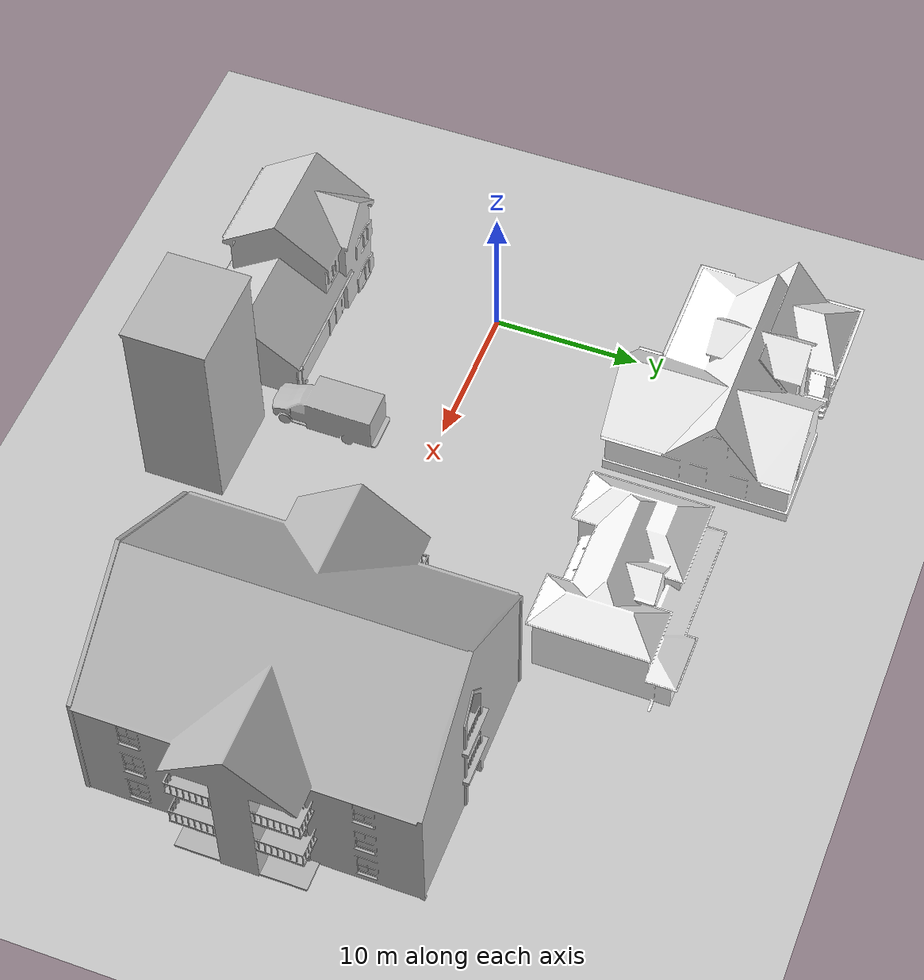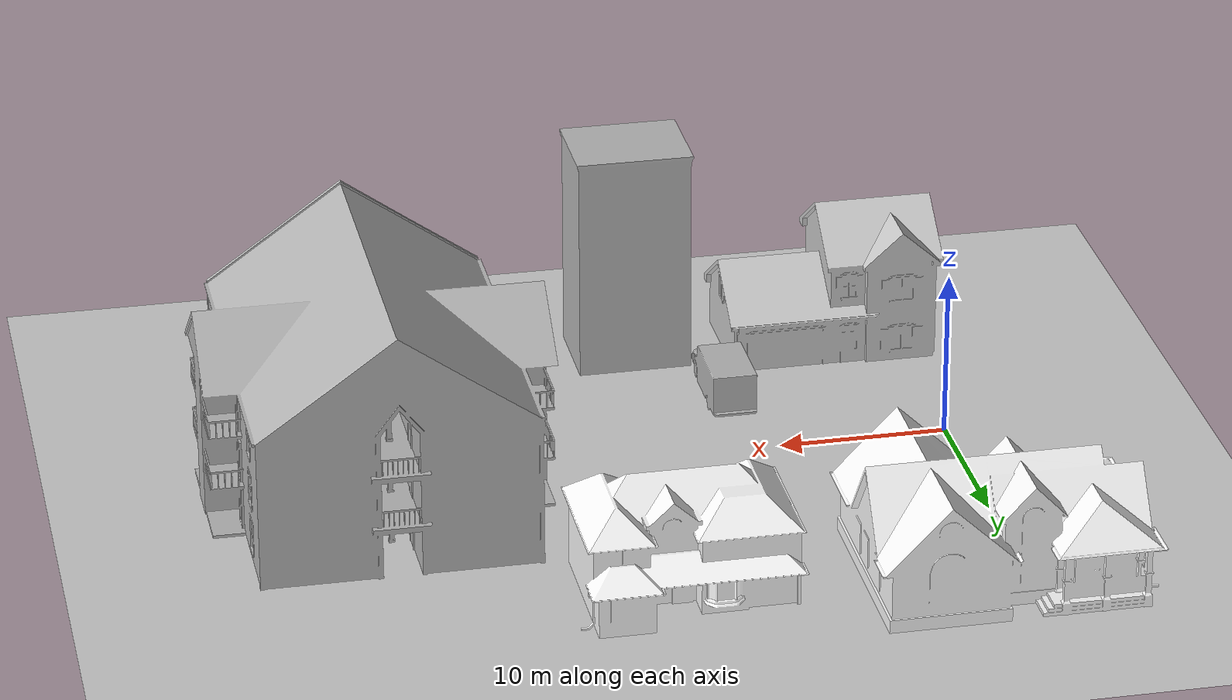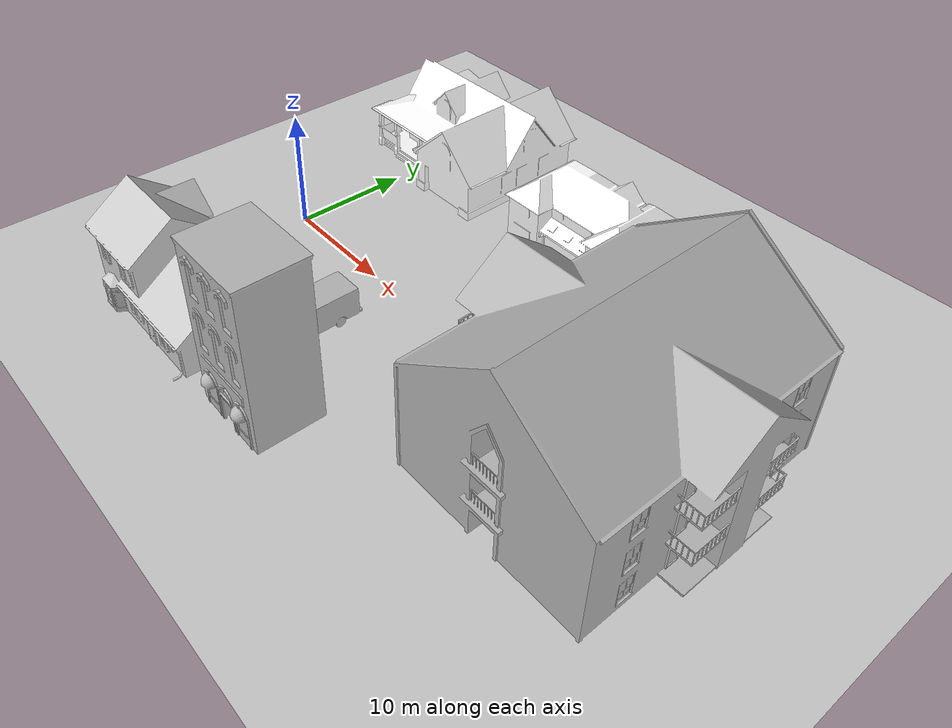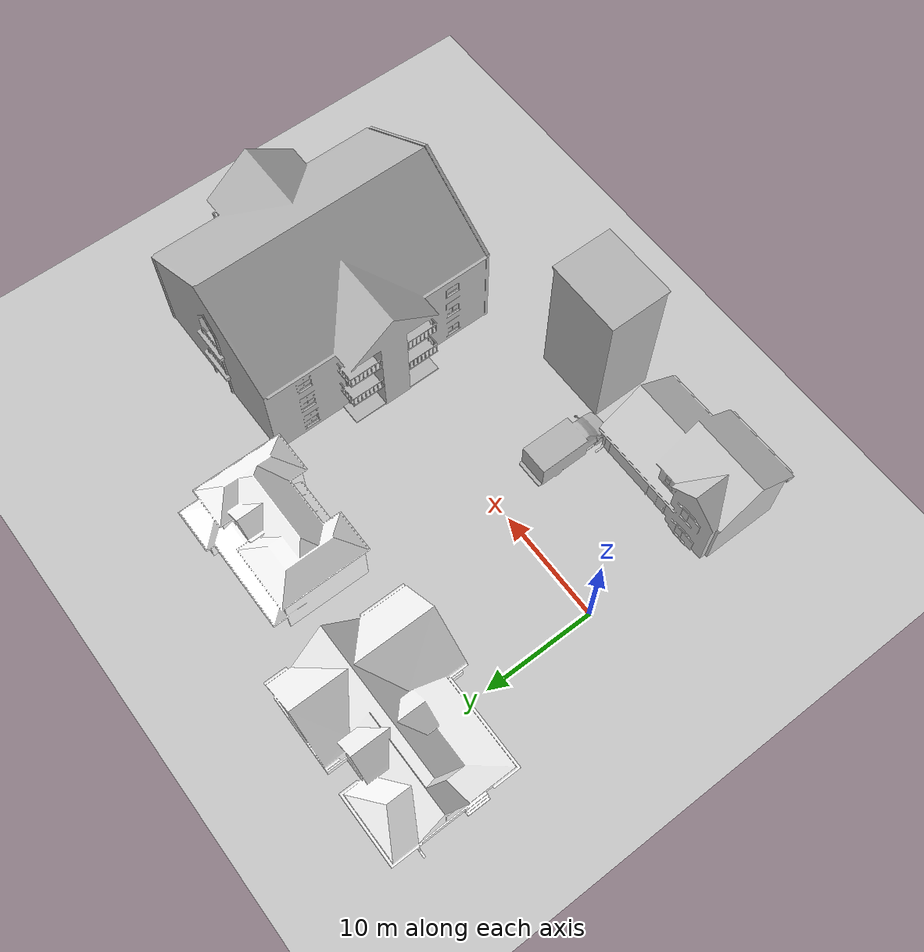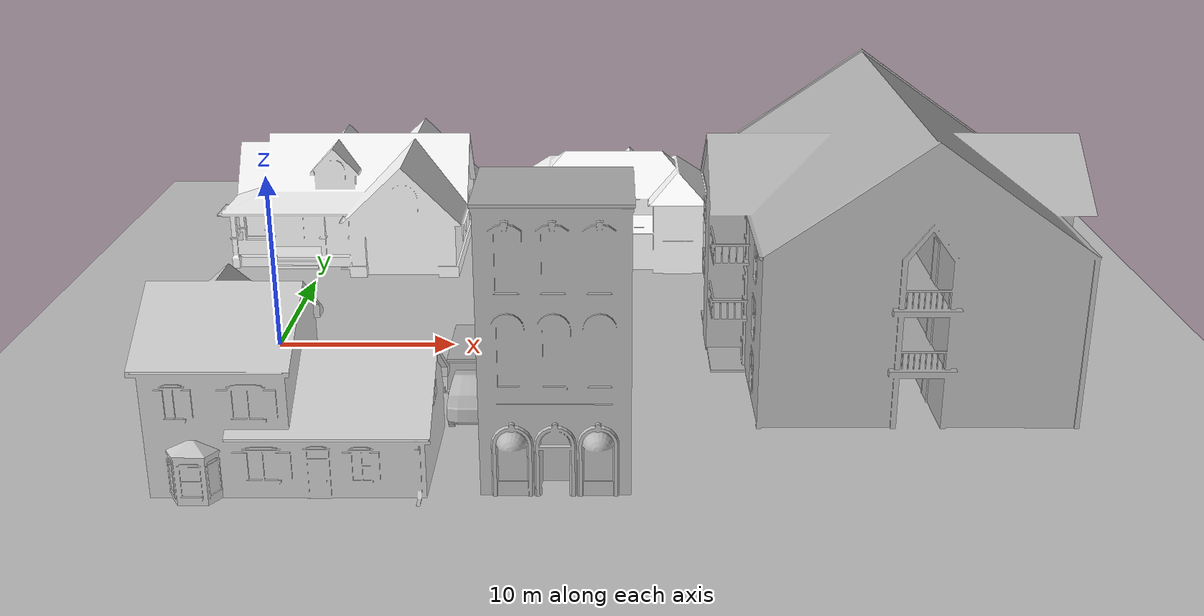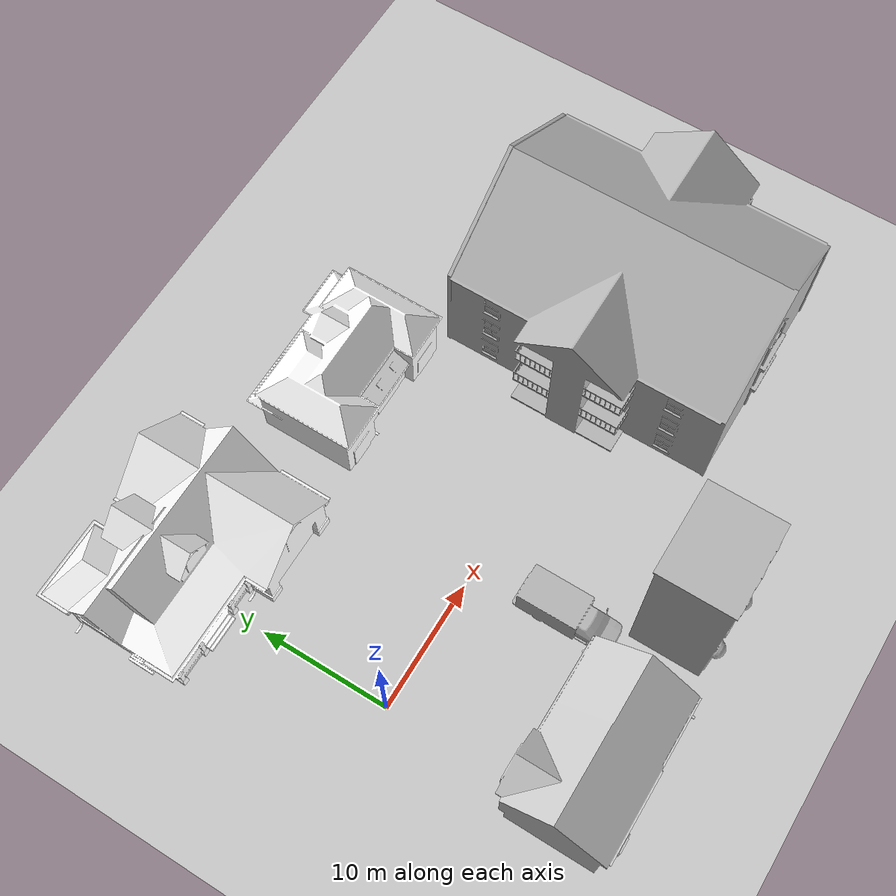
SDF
<sdf version="1.7">
 <world name="default">
  <light name="sun" type="directional">
   <pose>0 0 10 0 -0 0</pose>
   <diffuse>0.8 0.8 0.8 1</diffuse>
   <specular>0.2 0.2 0.2 1</specular>
   <attenuation>
    <range>1000</range>
    <constant>0.9</constant>
    <linear>0.01</linear>
    <quadratic>0.001</quadratic>
   </attenuation>
   <direction>-0.5 0.1 -0.9</direction>
   <spot><inner_angle>0</inner_angle><outer_angle>0</outer_angle><falloff>0</falloff></spot>
  </light>
  <model name="ground_plane">
   <static>1</static>
   <link name="link">
    <collision name="collision">
     <geometry><plane><normal>0 0 1</normal><size>100 100</size></plane></geometry>
     <surface><friction><ode><mu>100</mu><mu2>50</mu2></ode></friction></surface>
    </collision>
    <visual name="visual">
     <cast_shadows>0</cast_shadows>
     <geometry><plane><normal>0 0 1</normal><size>100 100</size></plane></geometry>
     <material>
      <script><uri>file://media/materials/scripts/gazebo.material</uri><name>Gazebo/Grey</name></script>
     </material>
    </visual>
   </link>
  </model>
  <gravity>0 0 -9.8</gravity>
  <magnetic_field>6e-06 2.3e-05 -4.2e-05</magnetic_field>
  <atmosphere type="adiabatic"/>
  <physics type="ode">
   <max_step_size>0.001</max_step_size>
   <real_time_factor>1</real_time_factor>
   <real_time_update_rate>1000</real_time_update_rate>
  </physics>
  <scene><ambient>0.4 0.4 0.4 1</ambient><background>0.7 0.7 0.7 1</background><shadows>1</shadows></scene>
  <spherical_coordinates>
   <surface_model>EARTH_WGS84</surface_model>
   <latitude_deg>0</latitude_deg>
   <longitude_deg>0</longitude_deg>
   <elevation>0</elevation>
   <heading_deg>0</heading_deg>
  </spherical_coordinates>
  <model name="House 1">
   <static>1</static>
   <link name="link">
    <collision name="collision">
     <geometry><mesh><uri>model://house_1/meshes/house_1.dae</uri><scale>1.5 1.5 1.5</scale></mesh></geometry>
    </collision>
    <visual name="visual">
     <geometry><mesh><uri>model://house_1/meshes/house_1.dae</uri><scale>1.5 1.5 1.5</scale></mesh></geometry>
     <material>
      <script>
       <uri>model://house_1/materials/scripts</uri>
       <uri>model://house_1/materials/textures</uri>
       <name>House_1/Diffuse</name>
      </script>
      <shader type="normal_map_tangent_space"><normal_map>House_1_Normal.png</normal_map></shader>
     </material>
    </visual>
   </link>
   <pose>1.76099 17.3697 0 0 -0 0</pose>
  </model>
  <model name="House 2">
   <static>1</static>
   <link name="link">
    <collision name="collision">
     <geometry><mesh><uri>model://house_2/meshes/house_2.dae</uri><scale>1.5 1.5 1.5</scale></mesh></geometry>
    </collision>
    <visual name="visual">
     <geometry><mesh><uri>model://house_2/meshes/house_2.dae</uri><scale>1.5 1.5 1.5</scale></mesh></geometry>
     <material>
      <script>
       <uri>model://house_2/materials/scripts</uri>
       <uri>model://house_2/materials/textures</uri>
       <uri>model://house_1/materials/textures</uri>
       <name>House_2/Diffuse</name>
      </script>
      <shader type="normal_map_tangent_space">
       <normal_map>model://house_1/materials/textures/House_1_Normal.png</normal_map>
      </shader>
     </material>
    </visual>
   </link>
   <pose>18.0788 15.273 0 0 -0 0</pose>
  </model>
  <model name="House 3">
   <static>1</static>
   <link name="link">
    <collision name="collision">
     <geometry><mesh><uri>model://house_3/meshes/house_3.dae</uri><scale>1.5 1.5 1.5</scale></mesh></geometry>
    </collision>
    <visual name="visual">
     <geometry><mesh><uri>model://house_3/meshes/house_3.dae</uri><scale>1.5 1.5 1.5</scale></mesh></geometry>
     <material>
      <script>
       <uri>model://house_3/materials/scripts</uri>
       <uri>model://house_3/materials/textures</uri>
       <uri>model://house_1/materials/textures</uri>
       <name>House_3/Diffuse</name>
      </script>
      <shader type="normal_map_tangent_space">
       <normal_map>model://house_1/materials/textures/House_1_Normal.png</normal_map>
      </shader>
     </material>
    </visual>
   </link>
   <pose>4.76494 -13.6383 0 0 -0 0</pose>
  </model>
  <model name="law_office">
   <static>1</static>
   <link name="link">
    <collision name="collision">
     <pose>0 0 6.96244 0 -0 0</pose>
     <geometry><box><size>6.84401 5.43165 13.9249</size></box></geometry>
    </collision>
    <visual name="visual">
     <geometry><mesh><uri>model://law_office/meshes/law_office.dae</uri></mesh></geometry>
    </visual>
   </link>
   <pose>16.385 -14.1889 0 0 -0 0</pose>
  </model>
  <model name="apartment">
   <static>1</static>
   <link name="link">
    <collision name="collision">
     <geometry><mesh><uri>model://apartment/meshes/apartment.dae</uri></mesh></geometry>
    </collision>
    <visual name="visual">
     <geometry><mesh><uri>model://apartment/meshes/apartment.dae</uri></mesh></geometry>
    </visual>
   </link>
   <pose>34.2345 0.496628 0 0 -0 0</pose>
  </model>
  <model name="ambulance">
   <static>1</static>
   <link name="link">
    <collision name="collision">
     <geometry>
      <mesh><scale>0.0254 0.0254 0.0254</scale><uri>model://ambulance/meshes/ambulance.obj</uri></mesh>
     </geometry>
    </collision>
    <visual name="visual">
     <geometry>
      <mesh><scale>0.0254 0.0254 0.0254</scale><uri>model://ambulance/meshes/ambulance.obj</uri></mesh>
     </geometry>
    </visual>
   </link>
   <pose>11.8841 -7.15745 0 0 -0 0</pose>
  </model>
 </world>
</sdf>
